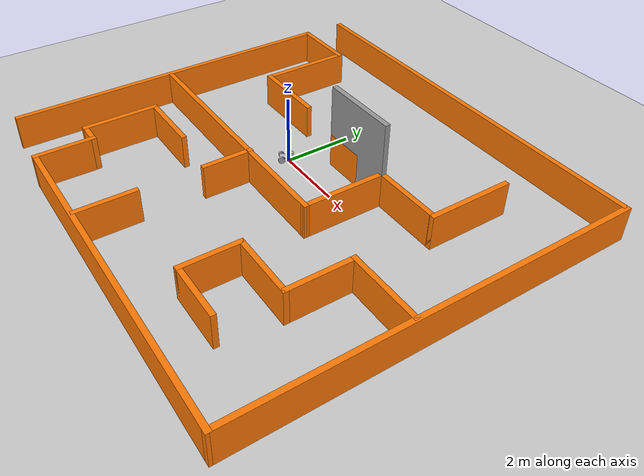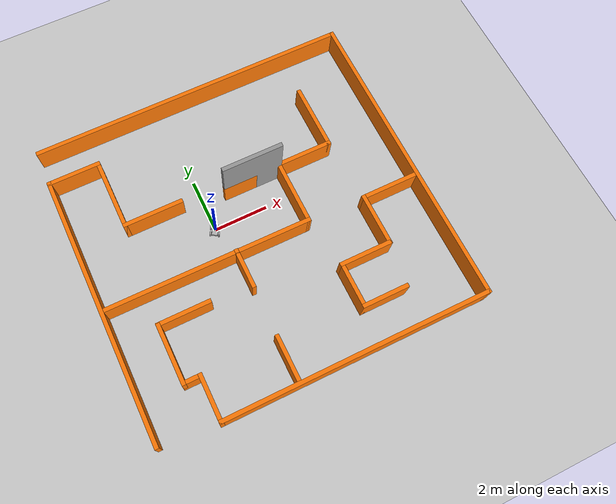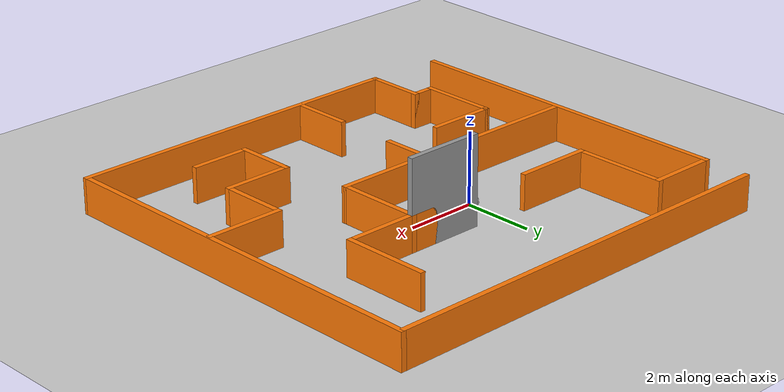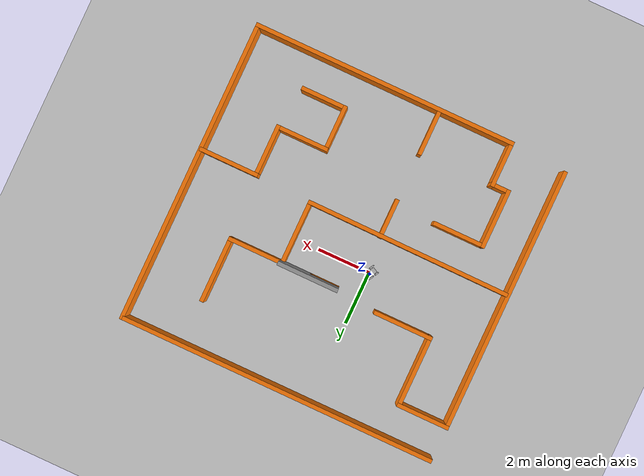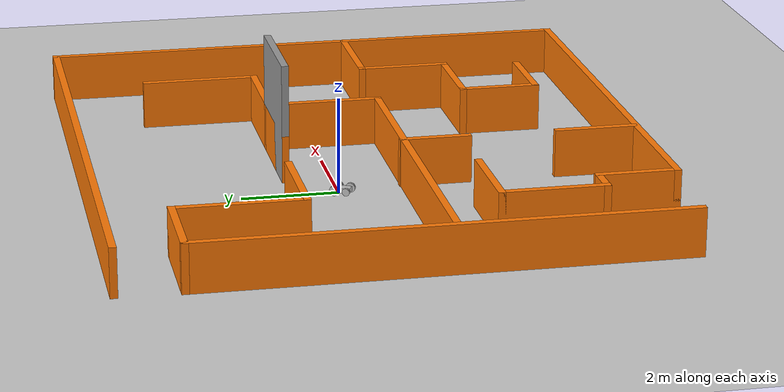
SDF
<sdf version="1.6">
 <world name="default">
  <model name="ground_plane">
   <static>1</static>
   <link name="link">
    <collision name="collision">
     <geometry><plane><normal>0 0 1</normal><size>100 100</size></plane></geometry>
     <surface><friction><ode><mu>100</mu><mu2>50</mu2></ode></friction></surface>
    </collision>
    <visual name="visual">
     <cast_shadows>0</cast_shadows>
     <geometry><plane><normal>0 0 1</normal><size>100 100</size></plane></geometry>
     <material>
      <script><uri>file://media/materials/scripts/gazebo.material</uri><name>Gazebo/Grey</name></script>
     </material>
    </visual>
   </link>
  </model>
  <light name="sun" type="directional">
   <pose>0 0 10 0 -0 0</pose>
   <diffuse>0.8 0.8 0.8 1</diffuse>
   <specular>0.1 0.1 0.1 1</specular>
   <attenuation>
    <range>1000</range>
    <constant>0.9</constant>
    <linear>0.01</linear>
    <quadratic>0.001</quadratic>
   </attenuation>
   <direction>-0.5 0.5 -1</direction>
  </light>
  <gravity>0 0 -9.8</gravity>
  <magnetic_field>6e-06 2.3e-05 -4.2e-05</magnetic_field>
  <atmosphere type="adiabatic"/>
  <physics name="default_physics" default="0" type="ode">
   <max_step_size>0.001</max_step_size>
   <real_time_factor>1</real_time_factor>
   <real_time_update_rate>1000</real_time_update_rate>
  </physics>
  <scene><ambient>0.4 0.4 0.4 1</ambient><background>0.7 0.7 0.7 1</background><shadows>1</shadows></scene>
  <spherical_coordinates>
   <surface_model>EARTH_WGS84</surface_model>
   <latitude_deg>0</latitude_deg>
   <longitude_deg>0</longitude_deg>
   <elevation>0</elevation>
   <heading_deg>0</heading_deg>
  </spherical_coordinates>
  <model name="mybot">
   <link name="chassis">
    <inertial>
     <pose>0.013636 0 0.1 0 -0 0</pose>
     <mass>11</mass>
     <inertia>
      <ixx>0.52</ixx>
      <ixy>0</ixy>
      <ixz>1.73472e-18</ixz>
      <iyy>1.04045</iyy>
      <iyz>0</iyz>
      <izz>0.140455</izz>
     </inertia>
    </inertial>
    <collision name="chassis_fixed_joint_lump__collision_collision">
     <geometry><box><size>0.4 0.2 0.1</size></box></geometry>
    </collision>
    <collision name="chassis_fixed_joint_lump__sensor_laser_collision_1">
     <pose>0.15 0 0.1 0 -0 0</pose>
     <geometry><cylinder><length>0.1</length><radius>0.05</radius></cylinder></geometry>
    </collision>
    <visual name="chassis_visual_visual"><geometry><box><size>0.4 0.2 0.1</size></box></geometry></visual>
    <visual name="chassis_fixed_joint_lump__sensor_laser_visual_1">
     <pose>0.15 0 0.1 0 -0 0</pose>
     <geometry><cylinder><length>0.1</length><radius>0.05</radius></cylinder></geometry>
     <material><script><uri>__default__</uri><name>__default__</name></script></material>
    </visual>
    <sensor name="head_hokuyo_sensor" type="ray">
     <visualize>1</visualize>
     <update_rate>20</update_rate>
     <ray>
      <scan>
       <horizontal>
        <samples>720</samples>
        <resolution>1</resolution>
        <min_angle>-1.5708</min_angle>
        <max_angle>1.5708</max_angle>
       </horizontal>
       <vertical><samples>1</samples><min_angle>0</min_angle><max_angle>0</max_angle></vertical>
      </scan>
      <range><min>0.1</min><max>10</max><resolution>0.01</resolution></range>
      <noise><type>gaussian</type><mean>0</mean><stddev>0.01</stddev></noise>
     </ray>
     <plugin name="gazebo_ros_head_hokuyo_controller" filename="libgazebo_ros_laser.so">
      <topicName>/m2wr/laser/scan</topicName>
      <frameName>sensor_laser</frameName>
      <robotNamespace>/</robotNamespace>
     </plugin>
     <pose>0.15 0 0.1 0 -0 0</pose>
    </sensor>
   </link>
   <link name="left_wheel">
    <pose>0.1 0.15 0 0 -0 0</pose>
    <inertial>
     <pose>0 0 0 -0 1.5707 1.5707</pose>
     <mass>5</mass>
     <inertia><ixx>1</ixx><ixy>0</ixy><ixz>0</ixz><iyy>1</iyy><iyz>0</iyz><izz>1</izz></inertia>
    </inertial>
    <collision name="left_wheel_fixed_joint_lump__collision_collision">
     <pose>0 0 0 3.14159 1.57079 -1.57089</pose>
     <geometry><cylinder><length>0.05</length><radius>0.1</radius></cylinder></geometry>
    </collision>
    <visual name="left_wheel_visual_visual">
     <pose>0 0 0 3.14159 1.57079 -1.57089</pose>
     <geometry><cylinder><length>0.05</length><radius>0.1</radius></cylinder></geometry>
    </visual>
   </link>
   <joint name="left_wheel_hinge" type="revolute">
    <child>left_wheel</child>
    <parent>chassis</parent>
    <axis>
     <xyz>0 1 0</xyz>
     <limit><lower>-1e+16</lower><upper>1e+16</upper></limit>
     <dynamics><spring_reference>0</spring_reference><spring_stiffness>0</spring_stiffness></dynamics>
     <use_parent_model_frame>1</use_parent_model_frame>
    </axis>
   </joint>
   <link name="left_wheebl">
    <pose>-0.15 0.15 0 0 -0 0</pose>
    <inertial>
     <pose>0 0 0 -0 1.5707 1.5707</pose>
     <mass>5</mass>
     <inertia><ixx>1</ixx><ixy>0</ixy><ixz>0</ixz><iyy>1</iyy><iyz>0</iyz><izz>1</izz></inertia>
    </inertial>
    <collision name="left_wheebl_fixed_joint_lump__collision_collision">
     <pose>0 0 0 3.14159 1.57079 -1.57089</pose>
     <geometry><cylinder><length>0.05</length><radius>0.1</radius></cylinder></geometry>
    </collision>
    <visual name="left_wheebl_fixed_joint_lump__left_wheelb_visual_visual">
     <pose>0 0 0 3.14159 1.57079 -1.57089</pose>
     <geometry><cylinder><length>0.05</length><radius>0.08</radius></cylinder></geometry>
    </visual>
   </link>
   <joint name="left_wheelb_hinge" type="revolute">
    <child>left_wheebl</child>
    <parent>chassis</parent>
    <axis>
     <xyz>0 1 0</xyz>
     <limit><lower>-1e+16</lower><upper>1e+16</upper></limit>
     <dynamics><spring_reference>0</spring_reference><spring_stiffness>0</spring_stiffness></dynamics>
     <use_parent_model_frame>1</use_parent_model_frame>
    </axis>
   </joint>
   <link name="right_wheel">
    <pose>0.1 -0.15 0 0 -0 0</pose>
    <inertial>
     <pose>0 0 0 -0 1.5707 1.5707</pose>
     <mass>5</mass>
     <inertia><ixx>1</ixx><ixy>0</ixy><ixz>0</ixz><iyy>1</iyy><iyz>0</iyz><izz>1</izz></inertia>
    </inertial>
    <collision name="right_wheel_fixed_joint_lump__collision_collision">
     <pose>0 0 0 3.14159 1.57079 -1.57089</pose>
     <geometry><cylinder><length>0.05</length><radius>0.1</radius></cylinder></geometry>
    </collision>
    <visual name="right_wheel_visual_visual">
     <pose>0 0 0 3.14159 1.57079 -1.57089</pose>
     <geometry><cylinder><length>0.05</length><radius>0.1</radius></cylinder></geometry>
    </visual>
   </link>
   <joint name="right_wheel_hinge" type="revolute">
    <child>right_wheel</child>
    <parent>chassis</parent>
    <axis>
     <xyz>0 1 0</xyz>
     <limit><lower>-1e+16</lower><upper>1e+16</upper></limit>
     <dynamics><spring_reference>0</spring_reference><spring_stiffness>0</spring_stiffness></dynamics>
     <use_parent_model_frame>1</use_parent_model_frame>
    </axis>
   </joint>
   <link name="right_wheelb">
    <pose>-0.15 -0.15 0 0 -0 0</pose>
    <inertial>
     <pose>0 0 0 -0 1.5707 1.5707</pose>
     <mass>5</mass>
     <inertia><ixx>1</ixx><ixy>0</ixy><ixz>0</ixz><iyy>1</iyy><iyz>0</iyz><izz>1</izz></inertia>
    </inertial>
    <collision name="right_wheelb_fixed_joint_lump__collision_collision">
     <pose>0 0 0 3.14159 1.57079 -1.57089</pose>
     <geometry><cylinder><length>0.05</length><radius>0.1</radius></cylinder></geometry>
    </collision>
    <visual name="right_wheelb_visual_visual">
     <pose>0 0 0 3.14159 1.57079 -1.57089</pose>
     <geometry><cylinder><length>0.05</length><radius>0.1</radius></cylinder></geometry>
    </visual>
   </link>
   <joint name="right_wheelb_hinge" type="revolute">
    <child>right_wheelb</child>
    <parent>chassis</parent>
    <axis>
     <xyz>0 1 0</xyz>
     <limit><lower>-1e+16</lower><upper>1e+16</upper></limit>
     <dynamics><spring_reference>0</spring_reference><spring_stiffness>0</spring_stiffness></dynamics>
     <use_parent_model_frame>1</use_parent_model_frame>
    </axis>
   </joint>
   <static>0</static>
   <plugin name="skid_steer_drive_controller" filename="libgazebo_ros_skid_steer_drive.so">
    <updateRate>100.0</updateRate>
    <robotNamespace>/</robotNamespace>
    <leftFrontJoint>left_wheel_hinge</leftFrontJoint>
    <rightFrontJoint>right_wheel_hinge</rightFrontJoint>
    <leftRearJoint>left_wheelb_hinge</leftRearJoint>
    <rightRearJoint>right_wheelb_hinge</rightRearJoint>
    <wheelSeparation>5</wheelSeparation>
    <wheelDiameter>0.6</wheelDiameter>
    <robotBaseFrame>base_footprint</robotBaseFrame>
    <torque>20</torque>
    <topicName>/cmd_vel</topicName>
    <broadcastTF>true</broadcastTF>
    <commandTopic>/cmd_vel</commandTopic>
    <odometryTopic>/odom</odometryTopic>
    <odometryFrame>/odom</odometryFrame>
    <covariance_x>0.0001</covariance_x>
    <covariance_y>0.0001</covariance_y>
    <covariance_yaw>0.0001</covariance_yaw>
   </plugin>
   <pose>-0.052512 -0.037592 0.100003 -4e-06 1.1e-05 1.07066</pose>
  </model>
  <model name="mybot_maze">
   <pose>1.255 -0.603535 0 0 -0 0</pose>
   <link name="Wall_13">
    <collision name="Wall_13_Collision">
     <geometry><box><size>10 0.15 1</size></box></geometry>
     <pose>0 0 0.5 0 -0 0</pose>
    </collision>
    <visual name="Wall_13_Visual">
     <pose>0 0 0.5 0 -0 0</pose>
     <geometry><box><size>10 0.15 1</size></box></geometry>
     <material>
      <script><uri>file://media/materials/scripts/gazebo.material</uri><name>Gazebo/Grey</name></script>
      <ambient>0.996078 0.47451 0.0196078 1</ambient>
     </material>
    </visual>
    <pose>1.06416 -5.66738 0 0 -0 3.14159</pose>
   </link>
   <link name="Wall_16">
    <collision name="Wall_16_Collision">
     <geometry><box><size>2 0.15 1</size></box></geometry>
     <pose>0 0 0.5 0 -0 0</pose>
    </collision>
    <visual name="Wall_16_Visual">
     <pose>0 0 0.5 0 -0 0</pose>
     <geometry><box><size>2 0.15 1</size></box></geometry>
     <material>
      <script><uri>file://media/materials/scripts/gazebo.material</uri><name>Gazebo/Grey</name></script>
      <ambient>0.996078 0.47451 0.0196078 1</ambient>
     </material>
    </visual>
    <pose>-5.06784 4.35962 0 0 -0 0</pose>
   </link>
   <link name="Wall_17">
    <collision name="Wall_17_Collision">
     <geometry><box><size>2.75 0.15 0.999</size></box></geometry>
     <pose>0 0 0.4995 0 -0 0</pose>
    </collision>
    <visual name="Wall_17_Visual">
     <pose>0 0 0.4995 0 -0 0</pose>
     <geometry><box><size>2.75 0.15 0.999</size></box></geometry>
     <material>
      <script><uri>file://media/materials/scripts/gazebo.material</uri><name>Gazebo/Grey</name></script>
      <ambient>0.996078 0.47451 0.0196078 1</ambient>
     </material>
    </visual>
    <pose>-4.14284 3.05962 0 0 0 -1.5708</pose>
   </link>
   <link name="Wall_18">
    <collision name="Wall_18_Collision">
     <geometry><box><size>2.25 0.15 1</size></box></geometry>
     <pose>0 0 0.5 0 -0 0</pose>
    </collision>
    <visual name="Wall_18_Visual">
     <pose>0 0 0.5 0 -0 0</pose>
     <geometry><box><size>2.25 0.15 1</size></box></geometry>
     <material>
      <script><uri>file://media/materials/scripts/gazebo.material</uri><name>Gazebo/Grey</name></script>
      <ambient>0.996078 0.47451 0.0196078 1</ambient>
     </material>
    </visual>
    <pose>-3.09284 1.75962 0 0 -0 0</pose>
   </link>
   <link name="Wall_2">
    <collision name="Wall_2_Collision">
     <geometry><box><size>12 0.15 1</size></box></geometry>
     <pose>0 0 0.5 0 -0 0</pose>
    </collision>
    <visual name="Wall_2_Visual">
     <pose>0 0 0.5 0 -0 0</pose>
     <geometry><box><size>12 0.15 1</size></box></geometry>
     <material>
      <script><uri>file://media/materials/scripts/gazebo.material</uri><name>Gazebo/Grey</name></script>
      <ambient>0.996078 0.47451 0.0196078 1</ambient>
     </material>
    </visual>
    <pose>-0.018003 5.66738 0 0 -0 0</pose>
   </link>
   <link name="Wall_20">
    <collision name="Wall_20_Collision">
     <geometry><box><size>7.75009 0.15 1</size></box></geometry>
     <pose>0 0 0.5 0 -0 0</pose>
    </collision>
    <visual name="Wall_20_Visual">
     <pose>0 0 0.5 0 -0 0</pose>
     <geometry><box><size>7.75009 0.15 1</size></box></geometry>
     <material>
      <script><uri>file://media/materials/scripts/gazebo.material</uri><name>Gazebo/Grey</name></script>
      <ambient>0.996078 0.47451 0.0196078 1</ambient>
     </material>
    </visual>
    <pose>-2.09984 -0.772376 0 0 0 -0.004737</pose>
   </link>
   <link name="Wall_21">
    <collision name="Wall_21_Collision">
     <geometry><box><size>2.5 0.15 1</size></box></geometry>
     <pose>0 0 0.5 0 -0 0</pose>
    </collision>
    <visual name="Wall_21_Visual">
     <pose>0 0 0.5 0 -0 0</pose>
     <geometry><box><size>2.5 0.15 1</size></box></geometry>
     <material>
      <script><uri>file://media/materials/scripts/gazebo.material</uri><name>Gazebo/Grey</name></script>
      <ambient>0.996078 0.47451 0.0196078 1</ambient>
     </material>
    </visual>
    <pose>1.70016 0.384624 0 0 -0 1.5708</pose>
   </link>
   <link name="Wall_23">
    <collision name="Wall_23_Collision">
     <geometry><box><size>2.25 0.15 2.5</size></box></geometry>
     <pose>0 0 1.25 0 -0 0</pose>
    </collision>
    <visual name="Wall_23_Visual">
     <pose>0 0 1.25 0 -0 0</pose>
     <geometry><box><size>2.25 0.15 2.5</size></box></geometry>
     <material>
      <script><uri>file://media/materials/scripts/gazebo.material</uri><name>Gazebo/Grey</name></script>
      <ambient>1 1 1 1</ambient>
     </material>
    </visual>
    <pose>0.650163 1.55962 0 0 -0 3.14159</pose>
   </link>
   <link name="Wall_24">
    <collision name="Wall_24_Collision">
     <geometry><box><size>4.25 0.15 1</size></box></geometry>
     <pose>0 0 0.5 0 -0 0</pose>
    </collision>
    <visual name="Wall_24_Visual">
     <pose>0 0 0.5 0 -0 0</pose>
     <geometry><box><size>4.25 0.15 1</size></box></geometry>
     <material>
      <script><uri>file://media/materials/scripts/gazebo.material</uri><name>Gazebo/Grey</name></script>
      <ambient>0.996078 0.47451 0.0196078 1</ambient>
     </material>
    </visual>
    <pose>1.65016 1.55962 0 0 -0 0</pose>
   </link>
   <link name="Wall_25">
    <collision name="Wall_25_Collision">
     <geometry><box><size>2.5 0.15 1</size></box></geometry>
     <pose>0 0 0.5 0 -0 0</pose>
    </collision>
    <visual name="Wall_25_Visual">
     <pose>0 0 0.5 0 -0 0</pose>
     <geometry><box><size>2.5 0.15 1</size></box></geometry>
     <material>
      <script><uri>file://media/materials/scripts/gazebo.material</uri><name>Gazebo/Grey</name></script>
      <ambient>0.996078 0.47451 0.0196078 1</ambient>
     </material>
    </visual>
    <pose>3.70016 2.73462 0 0 -0 1.5708</pose>
   </link>
   <link name="Wall_28">
    <collision name="Wall_28_Collision">
     <geometry><box><size>2.25 0.15 1</size></box></geometry>
     <pose>0 0 0.5 0 -0 0</pose>
    </collision>
    <visual name="Wall_28_Visual">
     <pose>0 0 0.5 0 -0 0</pose>
     <geometry><box><size>2.25 0.15 1</size></box></geometry>
     <material>
      <script><uri>file://media/materials/scripts/gazebo.material</uri><name>Gazebo/Grey</name></script>
      <ambient>0.996078 0.47451 0.0196078 1</ambient>
     </material>
    </visual>
    <pose>4.89516 -0.871376 0 0 -0 3.14159</pose>
   </link>
   <link name="Wall_29">
    <collision name="Wall_29_Collision">
     <geometry><box><size>2 0.15 1</size></box></geometry>
     <pose>0 0 0.5 0 -0 0</pose>
    </collision>
    <visual name="Wall_29_Visual">
     <pose>0 0 0.5 0 -0 0</pose>
     <geometry><box><size>2 0.15 1</size></box></geometry>
     <material>
      <script><uri>file://media/materials/scripts/gazebo.material</uri><name>Gazebo/Grey</name></script>
      <ambient>0.996078 0.47451 0.0196078 1</ambient>
     </material>
    </visual>
    <pose>3.84516 -1.79638 0 0 0 -1.5708</pose>
   </link>
   <link name="Wall_3">
    <collision name="Wall_3_Collision">
     <geometry><box><size>11.4851 0.15 1</size></box></geometry>
     <pose>0 0 0.5 0 -0 0</pose>
    </collision>
    <visual name="Wall_3_Visual">
     <pose>0 0 0.5 0 -0 0</pose>
     <geometry><box><size>11.4851 0.15 1</size></box></geometry>
     <material>
      <script><uri>file://media/materials/scripts/gazebo.material</uri><name>Gazebo/Grey</name></script>
      <ambient>0.996078 0.47451 0.0196078 1</ambient>
     </material>
    </visual>
    <pose>5.99099 0 0 0 0 -1.57112</pose>
   </link>
   <link name="Wall_30">
    <collision name="Wall_30_Collision">
     <geometry><box><size>2 0.15 1</size></box></geometry>
     <pose>0 0 0.5 0 -0 0</pose>
    </collision>
    <visual name="Wall_30_Visual">
     <pose>0 0 0.5 0 -0 0</pose>
     <geometry><box><size>2 0.15 1</size></box></geometry>
     <material>
      <script><uri>file://media/materials/scripts/gazebo.material</uri><name>Gazebo/Grey</name></script>
      <ambient>0.996078 0.47451 0.0196078 1</ambient>
     </material>
    </visual>
    <pose>2.92016 -2.72138 0 0 -0 3.14159</pose>
   </link>
   <link name="Wall_31">
    <collision name="Wall_31_Collision">
     <geometry><box><size>1.75 0.15 1</size></box></geometry>
     <pose>0 0 0.5 0 -0 0</pose>
    </collision>
    <visual name="Wall_31_Visual">
     <pose>0 0 0.5 0 -0 0</pose>
     <geometry><box><size>1.75 0.15 1</size></box></geometry>
     <material>
      <script><uri>file://media/materials/scripts/gazebo.material</uri><name>Gazebo/Grey</name></script>
      <ambient>0.996078 0.47451 0.0196078 1</ambient>
     </material>
    </visual>
    <pose>1.99516 -3.52138 0 0 0 -1.5708</pose>
   </link>
   <link name="Wall_32">
    <collision name="Wall_32_Collision">
     <geometry><box><size>1.75 0.15 1</size></box></geometry>
     <pose>0 0 0.5 0 -0 0</pose>
    </collision>
    <visual name="Wall_32_Visual">
     <pose>0 0 0.5 0 -0 0</pose>
     <geometry><box><size>1.75 0.15 1</size></box></geometry>
     <material>
      <script><uri>file://media/materials/scripts/gazebo.material</uri><name>Gazebo/Grey</name></script>
      <ambient>0.996078 0.47451 0.0196078 1</ambient>
     </material>
    </visual>
    <pose>2.79516 -4.32138 0 0 -0 0</pose>
   </link>
   <link name="Wall_34">
    <collision name="Wall_34_Collision">
     <geometry><box><size>1.75 0.15 1</size></box></geometry>
     <pose>0 0 0.5 0 -0 0</pose>
    </collision>
    <visual name="Wall_34_Visual">
     <pose>0 0 0.5 0 -0 0</pose>
     <geometry><box><size>1.75 0.15 1</size></box></geometry>
     <material>
      <script><uri>file://media/materials/scripts/gazebo.material</uri><name>Gazebo/Grey</name></script>
      <ambient>0.996078 0.47451 0.0196078 1</ambient>
     </material>
    </visual>
    <pose>-1.07784 -4.80538 0 0 -0 1.5708</pose>
   </link>
   <link name="Wall_37">
    <collision name="Wall_37_Collision">
     <geometry><box><size>1.5 0.15 1</size></box></geometry>
     <pose>0 0 0.5 0 -0 0</pose>
    </collision>
    <visual name="Wall_37_Visual">
     <pose>0 0 0.5 0 -0 0</pose>
     <geometry><box><size>1.5 0.15 1</size></box></geometry>
     <material>
      <script><uri>file://media/materials/scripts/gazebo.material</uri><name>Gazebo/Grey</name></script>
      <ambient>0.996078 0.47451 0.0196078 1</ambient>
     </material>
    </visual>
    <pose>-1.04584 -1.43338 0 0 0 -1.5708</pose>
   </link>
   <link name="Wall_39">
    <collision name="Wall_39_Collision">
     <geometry><box><size>1.75 0.15 1</size></box></geometry>
     <pose>0 0 0.5 0 -0 0</pose>
    </collision>
    <visual name="Wall_39_Visual">
     <pose>0 0 0.5 0 -0 0</pose>
     <geometry><box><size>1.75 0.15 1</size></box></geometry>
     <material>
      <script><uri>file://media/materials/scripts/gazebo.material</uri><name>Gazebo/Grey</name></script>
      <ambient>0.996078 0.47451 0.0196078 1</ambient>
     </material>
    </visual>
    <pose>-3.86084 -4.86738 0 0 -0 1.5708</pose>
   </link>
   <link name="Wall_40">
    <collision name="Wall_40_Collision">
     <geometry><box><size>0.75 0.15 0.999</size></box></geometry>
     <pose>0 0 0.4995 0 -0 0</pose>
    </collision>
    <visual name="Wall_40_Visual">
     <pose>0 0 0.4995 0 -0 0</pose>
     <geometry><box><size>0.75 0.15 0.999</size></box></geometry>
     <material>
      <script><uri>file://media/materials/scripts/gazebo.material</uri><name>Gazebo/Grey</name></script>
      <ambient>0.996078 0.47451 0.0196078 1</ambient>
     </material>
    </visual>
    <pose>-4.16084 -4.06738 0 0 -0 3.14159</pose>
   </link>
   <link name="Wall_41">
    <collision name="Wall_41_Collision">
     <geometry><box><size>2.25 0.15 1</size></box></geometry>
     <pose>0 0 0.5 0 -0 0</pose>
    </collision>
    <visual name="Wall_41_Visual">
     <pose>0 0 0.5 0 -0 0</pose>
     <geometry><box><size>2.25 0.15 1</size></box></geometry>
     <material>
      <script><uri>file://media/materials/scripts/gazebo.material</uri><name>Gazebo/Grey</name></script>
      <ambient>0.996078 0.47451 0.0196078 1</ambient>
     </material>
    </visual>
    <pose>-4.46084 -3.01738 0 0 -0 1.5708</pose>
   </link>
   <link name="Wall_42">
    <collision name="Wall_42_Collision">
     <geometry><box><size>2 0.15 1</size></box></geometry>
     <pose>0 0 0.5 0 -0 0</pose>
    </collision>
    <visual name="Wall_42_Visual">
     <pose>0 0 0.5 0 -0 0</pose>
     <geometry><box><size>2 0.15 1</size></box></geometry>
     <material>
      <script><uri>file://media/materials/scripts/gazebo.material</uri><name>Gazebo/Grey</name></script>
      <ambient>0.996078 0.47451 0.0196078 1</ambient>
     </material>
    </visual>
    <pose>-3.53584 -1.96738 0 0 -0 0</pose>
   </link>
   <link name="Wall_7">
    <collision name="Wall_7_Collision">
     <geometry><box><size>10 0.15 1</size></box></geometry>
     <pose>0 0 0.5 0 -0 0</pose>
    </collision>
    <visual name="Wall_7_Visual">
     <pose>0 0 0.5 0 -0 0</pose>
     <geometry><box><size>10 0.15 1</size></box></geometry>
     <material>
      <script><uri>file://media/materials/scripts/gazebo.material</uri><name>Gazebo/Grey</name></script>
      <ambient>0.996078 0.47451 0.0196078 1</ambient>
     </material>
    </visual>
    <pose>-5.99284 -0.565376 0 0 0 -1.5708</pose>
   </link>
   <static>1</static>
  </model>
 </world>
</sdf>
